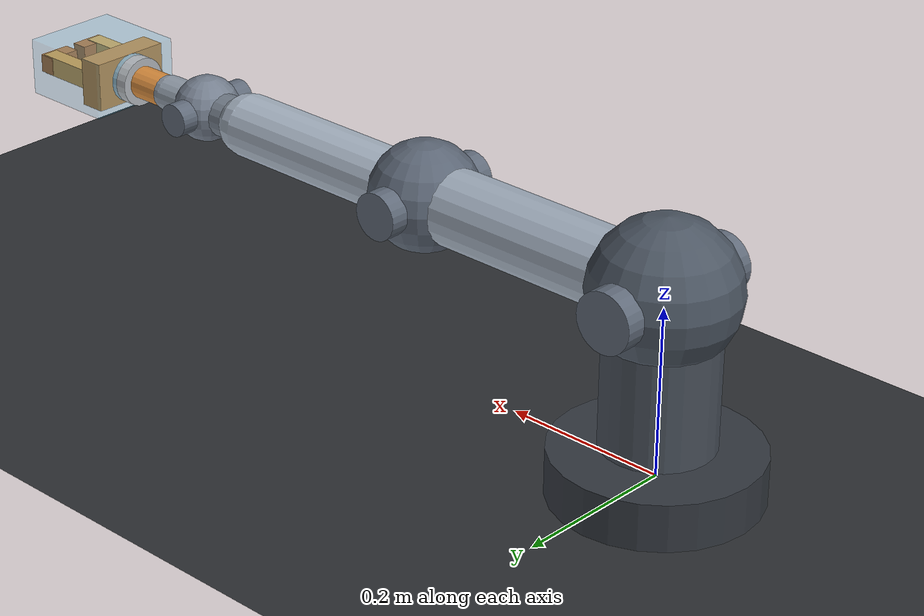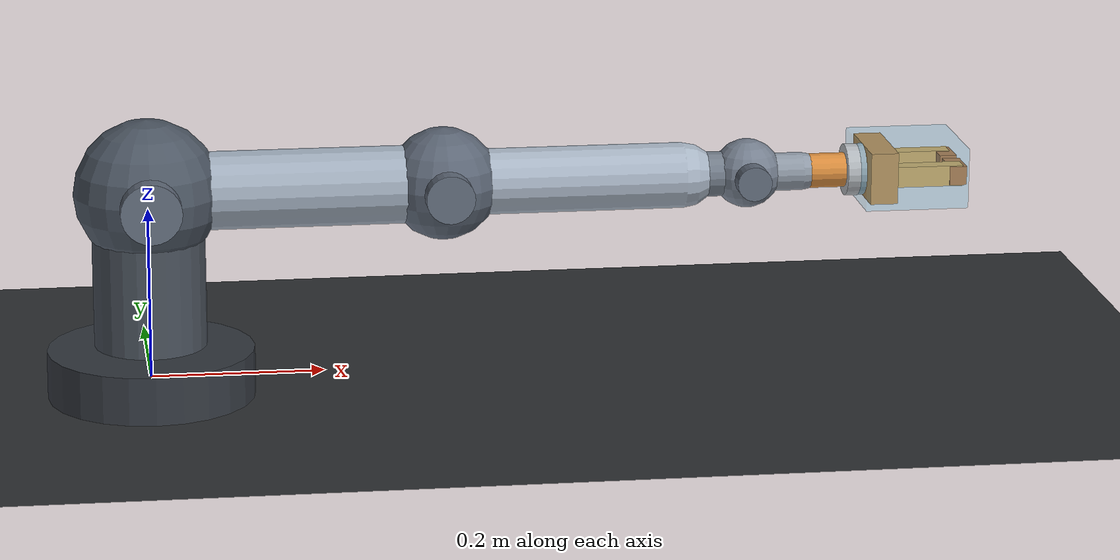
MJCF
<!-- Generated from configs/arm6_placeholder.yaml. Do not edit by hand. -->
<mujoco model="arm6_placeholder">
  <compiler angle="radian" inertiafromgeom="true"/>
  <option timestep="0.001" integrator="RK4" gravity="0 0 -9.81"/>

  <default>
    <joint type="hinge" limited="true" range="-3.14159 3.14159" damping="0.25" armature="0.03" frictionloss="0.02"/>
    <geom type="capsule" size="0.025" density="900" condim="3" contype="0" conaffinity="0" friction="0.8 0.02 0.001" rgba="0.65 0.7 0.76 1"/>
    <motor ctrllimited="true" gear="1"/>
  </default>

  <worldbody>
    <light name="key" pos="0 -1.2 1.8" dir="0 1 -1"/>
    <geom name="floor" type="plane" pos="0 0 -0.02" size="1.2 1.2 0.02" condim="3" contype="1" conaffinity="1" friction="0.9 0.02 0.001" rgba="0.18 0.19 0.2 1"/>

    <body name="base" pos="0 0 0">
      <geom name="base_plate" type="cylinder" size="0.12 0.035" mass="1.6" rgba="0.2 0.22 0.25 1"/>
      <geom name="base_collision" type="cylinder" size="0.11 0.03" contype="1" conaffinity="1" rgba="0.1 0.7 0.95 0.1" mass="0"/>

      <body name="yaw_column" pos="0 0 0.04">
        <joint name="joint_1" axis="0 0 1"/>
        <geom name="yaw_column_geom" type="cylinder" size="0.065 0.09" pos="0 0 0.09" mass="1.2" rgba="0.28 0.31 0.35 1"/>
        <geom name="shoulder_shell" type="sphere" size="0.085" pos="0 0 0.18" mass="0.8" rgba="0.3 0.34 0.39 1"/>

        <body name="upper_arm" pos="0 0 0.18">
          <joint name="joint_2" axis="0 1 0" range="-2.6 2.6"/>
          <geom name="shoulder_axis" type="cylinder" fromto="0 -0.1 0 0 0.1 0" size="0.035" mass="0.35" rgba="0.38 0.42 0.48 1"/>
          <geom name="upper_arm_geom" fromto="0 0 0 0.34 0 0" size="0.045" mass="3.2" rgba="0.63 0.68 0.74 1"/>
          <geom name="upper_arm_collision" fromto="0.05 0 0 0.32 0 0" size="0.036" contype="1" conaffinity="1" rgba="0.1 0.7 0.95 0.1" mass="0"/>

          <body name="forearm" pos="0.34 0 0">
            <joint name="joint_3" axis="0 1 0" range="-2.8 2.8"/>
            <geom name="elbow_shell" type="sphere" size="0.065" mass="0.55" rgba="0.36 0.4 0.46 1"/>
            <geom name="elbow_axis" type="cylinder" fromto="0 -0.08 0 0 0.08 0" size="0.028" mass="0.25" rgba="0.38 0.42 0.48 1"/>
            <geom name="forearm_geom" fromto="0 0 0 0.28 0 0" size="0.038" mass="2.4" rgba="0.66 0.71 0.77 1"/>
            <geom name="forearm_collision" fromto="0.04 0 0 0.26 0 0" size="0.03" contype="1" conaffinity="1" rgba="0.1 0.7 0.95 0.1" mass="0"/>

            <body name="wrist_roll_1" pos="0.28 0 0">
              <joint name="joint_4" axis="1 0 0"/>
              <geom name="wrist_roll_1_geom" fromto="0 0 0 0.075 0 0" size="0.026" mass="0.35" rgba="0.45 0.49 0.54 1"/>
              <geom name="wrist_roll_1_collision" fromto="0.01 0 0 0.065 0 0" size="0.022" contype="1" conaffinity="1" rgba="0.1 0.7 0.95 0.1" mass="0"/>

              <body name="wrist_pitch" pos="0.075 0 0">
                <joint name="joint_5" axis="0 1 0"/>
                <geom name="wrist_pitch_shell" type="sphere" size="0.04" mass="0.25" rgba="0.46 0.5 0.56 1"/>
                <geom name="wrist_pitch_axis" type="cylinder" fromto="0 -0.055 0 0 0.055 0" size="0.02" mass="0.12" rgba="0.38 0.42 0.48 1"/>
                <geom name="wrist_pitch_link" fromto="0 0 0 0.065 0 0" size="0.022" mass="0.22" rgba="0.56 0.6 0.65 1"/>
                <geom name="wrist_pitch_collision" fromto="0.01 0 0 0.055 0 0" size="0.018" contype="1" conaffinity="1" rgba="0.1 0.7 0.95 0.1" mass="0"/>

                <body name="wrist_roll_2" pos="0.065 0 0">
                  <joint name="joint_6" axis="1 0 0"/>
                  <geom name="wrist_roll_2_geom" fromto="0 0 0 0.055 0 0" size="0.02" mass="0.18" rgba="0.85 0.55 0.24 1"/>
                  <geom name="gripper_mount" type="cylinder" fromto="0.05 0 0 0.078 0 0" size="0.03" mass="0.12" rgba="0.7 0.72 0.74 1"/>
                  <geom name="gripper_palm" type="box" pos="0.088 0 0" size="0.016 0.05 0.03" mass="0.18" rgba="0.86 0.56 0.25 1"/>
                  <geom name="gripper_left_finger" type="box" pos="0.138 0.035 0" size="0.044 0.01 0.012" mass="0.055" rgba="0.93 0.68 0.32 1"/>
                  <geom name="gripper_right_finger" type="box" pos="0.138 -0.035 0" size="0.044 0.01 0.012" mass="0.055" rgba="0.93 0.68 0.32 1"/>
                  <geom name="gripper_left_tip" type="box" pos="0.176 0.026 0" size="0.01 0.02 0.011" mass="0.025" rgba="0.8 0.46 0.2 1"/>
                  <geom name="gripper_right_tip" type="box" pos="0.176 -0.026 0" size="0.01 0.02 0.011" mass="0.025" rgba="0.8 0.46 0.2 1"/>
                  <geom name="wrist_roll_2_collision" fromto="0.01 0 0 0.075 0 0" size="0.018" contype="1" conaffinity="1" rgba="0.1 0.7 0.95 0.1" mass="0"/>
                  <geom name="gripper_collision" type="box" pos="0.125 0 0" size="0.06 0.06 0.035" contype="1" conaffinity="1" rgba="0.1 0.7 0.95 0.1" mass="0"/>
                  <site name="tool0" pos="0.19 0 0" size="0.003" rgba="0.95 0.95 0.95 0"/>
                </body>
              </body>
            </body>
          </body>
        </body>
      </body>
    </body>
  </worldbody>

  <actuator>
    <motor name="motor_1" joint="joint_1" ctrlrange="-10 10"/>
    <motor name="motor_2" joint="joint_2" ctrlrange="-40 40"/>
    <motor name="motor_3" joint="joint_3" ctrlrange="-30 30"/>
    <motor name="motor_4" joint="joint_4" ctrlrange="-8 8"/>
    <motor name="motor_5" joint="joint_5" ctrlrange="-8 8"/>
    <motor name="motor_6" joint="joint_6" ctrlrange="-8 8"/>
  </actuator>
</mujoco>
